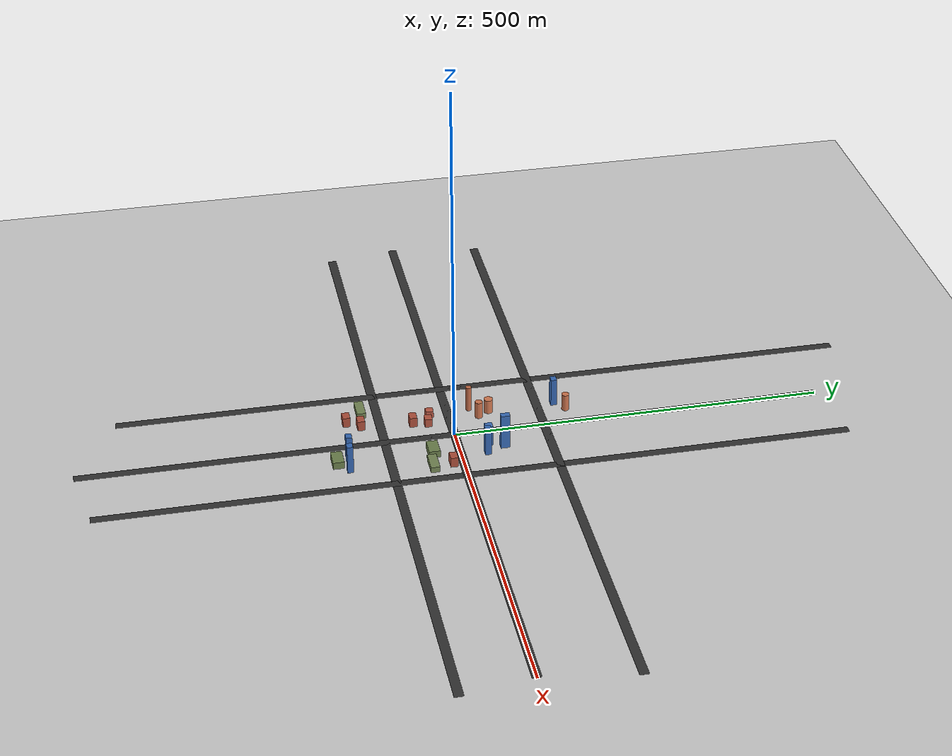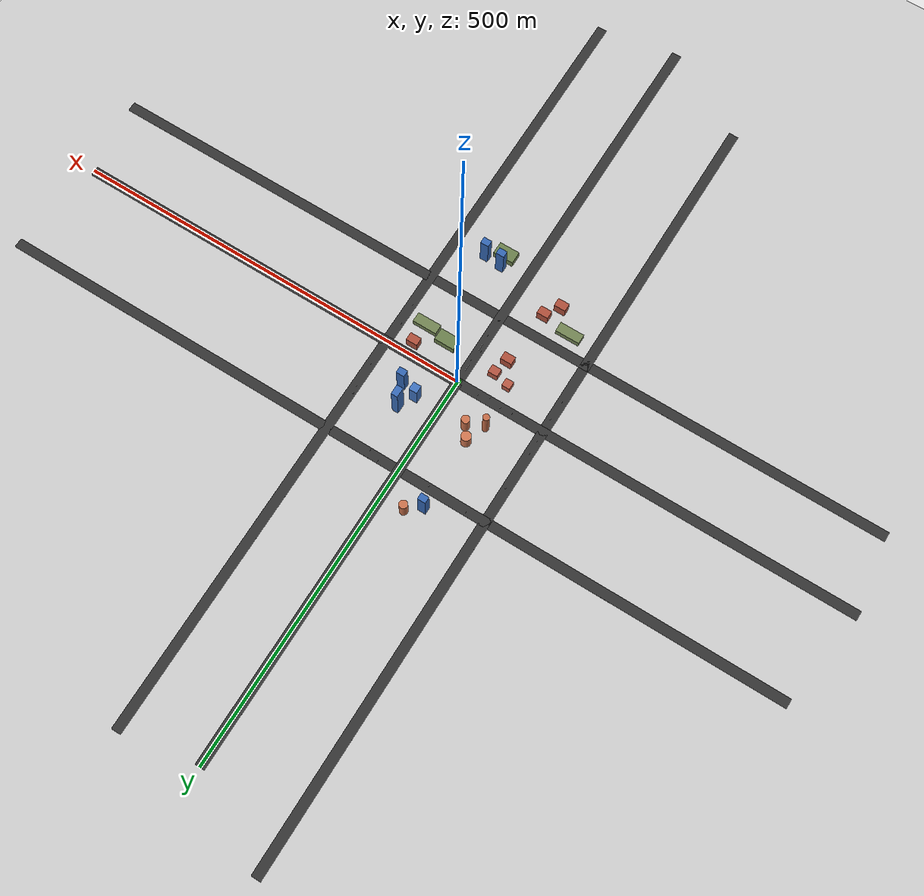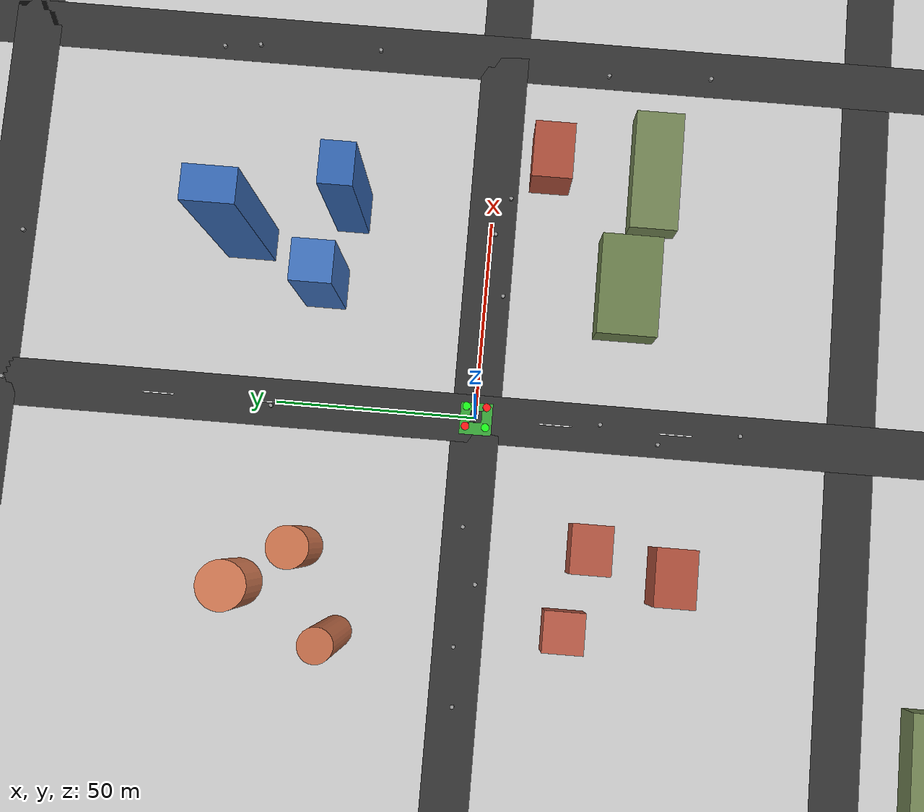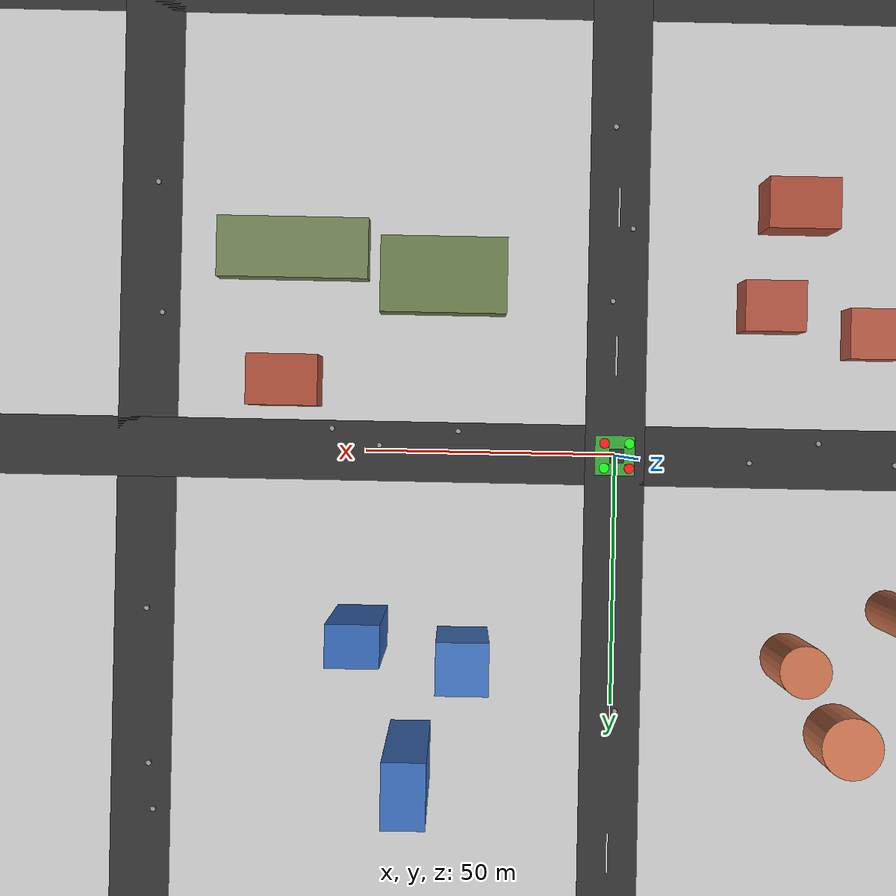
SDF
<sdf version="1.7">
 <world name="simple_city">
  <physics type="ode">
   <real_time_update_rate>1000</real_time_update_rate>
   <max_step_size>0.001</max_step_size>
   <real_time_factor>1</real_time_factor>
  </physics>
  <scene><ambient>0.4 0.4 0.4 1</ambient><background>0.53 0.81 0.98 1</background><shadows>1</shadows></scene>
  <light name="sun" type="directional">
   <pose>0 0 100 0 -0.5 0.2</pose>
   <diffuse>0.9 0.9 0.9 1</diffuse>
   <specular>0.3 0.3 0.3 1</specular>
   <direction>-0.5 0.2 -0.9</direction>
   <attenuation><range>10</range></attenuation>
   <spot><inner_angle>0</inner_angle><outer_angle>0</outer_angle><falloff>0</falloff></spot>
  </light>
  <model name="ground_plane">
   <static>1</static>
   <link name="link">
    <collision name="collision">
     <geometry><plane><normal>0 0 1</normal><size>500 500</size></plane></geometry>
    </collision>
    <visual name="visual">
     <geometry><plane><normal>0 0 1</normal><size>500 500</size></plane></geometry>
     <material>
      <script><uri>file://media/materials/scripts/gazebo.material</uri><name>Gazebo/Grey</name></script>
     </material>
    </visual>
   </link>
  </model>
  <model name="road_main_avenue">
   <static>1</static>
   <pose>0 0 0.01 0 -0 0</pose>
   <link name="link">
    <collision name="col"><geometry><box><size>12 1000 0.02</size></box></geometry></collision>
    <visual name="vis">
     <geometry><box><size>12 1000 0.02</size></box></geometry>
     <material>
      <ambient>0.15 0.15 0.15 1</ambient>
      <diffuse>0.2 0.2 0.2 1</diffuse>
      <specular>0.05 0.05 0.05 1</specular>
     </material>
    </visual>
   </link>
  </model>
  <model name="road_cross_street">
   <static>1</static>
   <pose>0 0 0.01 0 -0 0</pose>
   <link name="link">
    <collision name="col"><geometry><box><size>1000 12 0.02</size></box></geometry></collision>
    <visual name="vis">
     <geometry><box><size>1000 12 0.02</size></box></geometry>
     <material>
      <ambient>0.15 0.15 0.15 1</ambient>
      <diffuse>0.2 0.2 0.2 1</diffuse>
      <specular>0.05 0.05 0.05 1</specular>
     </material>
    </visual>
   </link>
  </model>
  <model name="road_cross_street">
   <static>1</static>
   <pose>0 0 0.01 0 -0 0</pose>
   <link name="link">
    <collision name="col"><geometry><box><size>1000 12 0.02</size></box></geometry></collision>
    <visual name="vis">
     <geometry><box><size>1000 12 0.02</size></box></geometry>
     <material>
      <ambient>0.15 0.15 0.15 1</ambient>
      <diffuse>0.2 0.2 0.2 1</diffuse>
      <specular>0.05 0.05 0.05 1</specular>
     </material>
    </visual>
   </link>
  </model>
  <model name="road_marking_N1">
   <static>1</static>
   <pose>0 20 0.02 0 -0 0</pose>
   <link name="link">
    <visual name="v">
     <geometry><box><size>0.3 8 0.001</size></box></geometry>
     <material><ambient>1 1 1 1</ambient><diffuse>1 1 1 1</diffuse></material>
    </visual>
   </link>
  </model>
  <model name="road_marking_N2">
   <static>1</static>
   <pose>0 50 0.02 0 -0 0</pose>
   <link name="link">
    <visual name="v">
     <geometry><box><size>0.3 8 0.001</size></box></geometry>
     <material><ambient>1 1 1 1</ambient><diffuse>1 1 1 1</diffuse></material>
    </visual>
   </link>
  </model>
  <model name="road_marking_N3">
   <static>1</static>
   <pose>0 80 0.02 0 -0 0</pose>
   <link name="link">
    <visual name="v">
     <geometry><box><size>0.3 8 0.001</size></box></geometry>
     <material><ambient>1 1 1 1</ambient><diffuse>1 1 1 1</diffuse></material>
    </visual>
   </link>
  </model>
  <model name="road_marking_S1">
   <static>1</static>
   <pose>0 -20 0.02 0 -0 0</pose>
   <link name="link">
    <visual name="v">
     <geometry><box><size>0.3 8 0.001</size></box></geometry>
     <material><ambient>1 1 1 1</ambient><diffuse>1 1 1 1</diffuse></material>
    </visual>
   </link>
  </model>
  <model name="road_marking_S2">
   <static>1</static>
   <pose>0 -50 0.02 0 -0 0</pose>
   <link name="link">
    <visual name="v">
     <geometry><box><size>0.3 8 0.001</size></box></geometry>
     <material><ambient>1 1 1 1</ambient><diffuse>1 1 1 1</diffuse></material>
    </visual>
   </link>
  </model>
  <model name="tower_A1">
   <static>1</static>
   <pose>30 40 15 0 -0 0</pose>
   <link name="link">
    <collision name="col"><geometry><box><size>10 10 30</size></box></geometry></collision>
    <visual name="vis">
     <geometry><box><size>10 10 30</size></box></geometry>
     <material>
      <ambient>0.2 0.35 0.6 1</ambient>
      <diffuse>0.25 0.45 0.75 1</diffuse>
      <specular>0.5 0.5 0.5 1</specular>
     </material>
    </visual>
   </link>
  </model>
  <model name="tower_A2">
   <static>1</static>
   <pose>50 35 20 0 -0 0</pose>
   <link name="link">
    <collision name="col"><geometry><box><size>10 8 40</size></box></geometry></collision>
    <visual name="vis">
     <geometry><box><size>10 8 40</size></box></geometry>
     <material>
      <ambient>0.15 0.3 0.55 1</ambient>
      <diffuse>0.2 0.4 0.7 1</diffuse>
      <specular>0.6 0.6 0.6 1</specular>
     </material>
    </visual>
   </link>
  </model>
  <model name="tower_A3">
   <static>1</static>
   <pose>40 60 25 0 -0 0</pose>
   <link name="link">
    <collision name="col"><geometry><box><size>8 12 50</size></box></geometry></collision>
    <visual name="vis">
     <geometry><box><size>8 12 50</size></box></geometry>
     <material>
      <ambient>0.18 0.32 0.58 1</ambient>
      <diffuse>0.22 0.42 0.72 1</diffuse>
      <specular>0.5 0.5 0.5 1</specular>
     </material>
    </visual>
   </link>
  </model>
  <model name="apt_B1">
   <static>1</static>
   <pose>-35 40 12 0 -0 0</pose>
   <link name="link">
    <collision name="col">
     <geometry><cylinder><radius>5</radius><length>24</length></cylinder></geometry>
    </collision>
    <visual name="vis">
     <geometry><cylinder><radius>5</radius><length>24</length></cylinder></geometry>
     <material>
      <ambient>0.72 0.38 0.25 1</ambient>
      <diffuse>0.8 0.45 0.3 1</diffuse>
      <specular>0.2 0.1 0.1 1</specular>
     </material>
    </visual>
   </link>
  </model>
  <model name="apt_B2">
   <static>1</static>
   <pose>-55 30 18 0 -0 0</pose>
   <link name="link">
    <collision name="col">
     <geometry><cylinder><radius>4</radius><length>36</length></cylinder></geometry>
    </collision>
    <visual name="vis">
     <geometry><cylinder><radius>4</radius><length>36</length></cylinder></geometry>
     <material>
      <ambient>0.68 0.35 0.22 1</ambient>
      <diffuse>0.76 0.42 0.28 1</diffuse>
      <specular>0.2 0.1 0.1 1</specular>
     </material>
    </visual>
   </link>
  </model>
  <model name="apt_B3">
   <static>1</static>
   <pose>-45 55 10 0 -0 0</pose>
   <link name="link">
    <collision name="col">
     <geometry><cylinder><radius>6</radius><length>20</length></cylinder></geometry>
    </collision>
    <visual name="vis">
     <geometry><cylinder><radius>6</radius><length>20</length></cylinder></geometry>
     <material>
      <ambient>0.74 0.4 0.27 1</ambient>
      <diffuse>0.82 0.47 0.32 1</diffuse>
      <specular>0.2 0.1 0.1 1</specular>
     </material>
    </visual>
   </link>
  </model>
  <model name="warehouse_C1">
   <static>1</static>
   <pose>35 -35 5 0 -0 0</pose>
   <link name="link">
    <collision name="col"><geometry><box><size>25 15 10</size></box></geometry></collision>
    <visual name="vis">
     <geometry><box><size>25 15 10</size></box></geometry>
     <material>
      <ambient>0.35 0.42 0.25 1</ambient>
      <diffuse>0.42 0.5 0.3 1</diffuse>
      <specular>0.1 0.1 0.1 1</specular>
     </material>
    </visual>
   </link>
  </model>
  <model name="warehouse_C2">
   <static>1</static>
   <pose>65 -40 4 0 -0 0</pose>
   <link name="link">
    <collision name="col"><geometry><box><size>30 12 8</size></box></geometry></collision>
    <visual name="vis">
     <geometry><box><size>30 12 8</size></box></geometry>
     <material>
      <ambient>0.38 0.45 0.28 1</ambient>
      <diffuse>0.45 0.52 0.33 1</diffuse>
      <specular>0.1 0.1 0.1 1</specular>
     </material>
    </visual>
   </link>
  </model>
  <model name="house_D1">
   <static>1</static>
   <pose>-30 -30 6 0 -0 0</pose>
   <link name="link">
    <collision name="col"><geometry><box><size>12 10 12</size></box></geometry></collision>
    <visual name="vis">
     <geometry><box><size>12 10 12</size></box></geometry>
     <material>
      <ambient>0.6 0.28 0.2 1</ambient>
      <diffuse>0.7 0.33 0.25 1</diffuse>
      <specular>0.15 0.1 0.1 1</specular>
     </material>
    </visual>
   </link>
  </model>
  <model name="house_D2">
   <static>1</static>
   <pose>-50 -25 5 0 -0 0</pose>
   <link name="link">
    <collision name="col"><geometry><box><size>10 10 10</size></box></geometry></collision>
    <visual name="vis">
     <geometry><box><size>10 10 10</size></box></geometry>
     <material>
      <ambient>0.62 0.3 0.22 1</ambient>
      <diffuse>0.72 0.35 0.27 1</diffuse>
      <specular>0.15 0.1 0.1 1</specular>
     </material>
    </visual>
   </link>
  </model>
  <model name="house_D3">
   <static>1</static>
   <pose>-35 -50 7 0 -0 0</pose>
   <link name="link">
    <collision name="col"><geometry><box><size>14 10 14</size></box></geometry></collision>
    <visual name="vis">
     <geometry><box><size>14 10 14</size></box></geometry>
     <material>
      <ambient>0.58 0.26 0.18 1</ambient>
      <diffuse>0.68 0.31 0.23 1</diffuse>
      <specular>0.15 0.1 0.1 1</specular>
     </material>
    </visual>
   </link>
  </model>
  <model name="park">
   <static>1</static>
   <pose>0 0 0.015 0 -0 0</pose>
   <link name="link">
    <visual name="vis">
     <geometry><box><size>8 8 0.03</size></box></geometry>
     <material><ambient>0.18 0.55 0.18 1</ambient><diffuse>0.22 0.65 0.22 1</diffuse></material>
    </visual>
   </link>
  </model>
  <gravity>0 0 -9.8</gravity>
  <magnetic_field>6e-06 2.3e-05 -4.2e-05</magnetic_field>
  <atmosphere type="adiabatic"/>
  <audio><device>default</device></audio>
  <spherical_coordinates>
   <surface_model>EARTH_WGS84</surface_model>
   <latitude_deg>0</latitude_deg>
   <longitude_deg>0</longitude_deg>
   <elevation>0</elevation>
   <heading_deg>0</heading_deg>
  </spherical_coordinates>
  <model name="road_main_avenue_clone">
   <static>1</static>
   <pose>94 16 0.01 0 -0 0</pose>
   <link name="link">
    <collision name="col"><geometry><box><size>12 1000 0.02</size></box></geometry></collision>
    <visual name="vis">
     <geometry><box><size>12 1000 0.02</size></box></geometry>
     <material>
      <ambient>0.15 0.15 0.15 1</ambient>
      <diffuse>0.2 0.2 0.2 1</diffuse>
      <specular>0.05 0.05 0.05 1</specular>
     </material>
    </visual>
   </link>
  </model>
  <model name="road_cross_street_clone">
   <static>1</static>
   <pose>19.1477 121.743 0.01 0 -0 0</pose>
   <link name="link">
    <collision name="col"><geometry><box><size>1000 12 0.02</size></box></geometry></collision>
    <visual name="vis">
     <geometry><box><size>1000 12 0.02</size></box></geometry>
     <material>
      <ambient>0.15 0.15 0.15 1</ambient>
      <diffuse>0.2 0.2 0.2 1</diffuse>
      <specular>0.05 0.05 0.05 1</specular>
     </material>
    </visual>
   </link>
  </model>
  <model name="road_cross_street_clone_0">
   <static>1</static>
   <pose>14 -93.5219 0.01 0 -0 0</pose>
   <link name="link">
    <collision name="col"><geometry><box><size>1000 12 0.02</size></box></geometry></collision>
    <visual name="vis">
     <geometry><box><size>1000 12 0.02</size></box></geometry>
     <material>
      <ambient>0.15 0.15 0.15 1</ambient>
      <diffuse>0.2 0.2 0.2 1</diffuse>
      <specular>0.05 0.05 0.05 1</specular>
     </material>
    </visual>
   </link>
  </model>
  <model name="road_main_avenue_clone_0_clone">
   <static>1</static>
   <pose>-110.965 60.7613 0.01 0 -0 0</pose>
   <link name="link">
    <collision name="col"><geometry><box><size>12 1000 0.02</size></box></geometry></collision>
    <visual name="vis">
     <geometry><box><size>12 1000 0.02</size></box></geometry>
     <material>
      <ambient>0.15 0.15 0.15 1</ambient>
      <diffuse>0.2 0.2 0.2 1</diffuse>
      <specular>0.05 0.05 0.05 1</specular>
     </material>
    </visual>
   </link>
  </model>
  <model name="unit_cylinder">
   <pose>-0.940584 51.3094 0.519998 -4e-06 -0 -1.4e-05</pose>
   <link name="link">
    <inertial>
     <mass>1</mass>
     <inertia><ixx>0.145833</ixx><ixy>0</ixy><ixz>0</ixz><iyy>0.145833</iyy><iyz>0</iyz><izz>0.125</izz></inertia>
    </inertial>
    <collision name="collision">
     <geometry><cylinder><radius>0.5</radius><length>1</length></cylinder></geometry>
    </collision>
    <visual name="visual">
     <geometry><cylinder><radius>0.5</radius><length>1</length></cylinder></geometry>
     <material>
      <script><name>Gazebo/Grey</name><uri>file://media/materials/scripts/gazebo.material</uri></script>
     </material>
    </visual>
   </link>
  </model>
  <model name="unit_cylinder_0">
   <pose>31.5503 -4.28351 0.519991 -1e-06 2e-06 -0.000484</pose>
   <link name="link">
    <inertial>
     <mass>1</mass>
     <inertia><ixx>0.145833</ixx><ixy>0</ixy><ixz>0</ixz><iyy>0.145833</iyy><iyz>0</iyz><izz>0.125</izz></inertia>
    </inertial>
    <collision name="collision">
     <geometry><cylinder><radius>0.5</radius><length>1</length></cylinder></geometry>
    </collision>
    <visual name="visual">
     <geometry><cylinder><radius>0.5</radius><length>1</length></cylinder></geometry>
     <material>
      <script><name>Gazebo/Grey</name><uri>file://media/materials/scripts/gazebo.material</uri></script>
     </material>
    </visual>
   </link>
  </model>
  <model name="unit_cylinder_0_clone">
   <pose>47.3155 -1.12101 0.519989 1e-06 -1e-06 -0.000436</pose>
   <link name="link">
    <inertial>
     <mass>1</mass>
     <inertia><ixx>0.145833</ixx><ixy>0</ixy><ixz>0</ixz><iyy>0.145833</iyy><iyz>0</iyz><izz>0.125</izz></inertia>
    </inertial>
    <collision name="collision">
     <geometry><cylinder><radius>0.5</radius><length>1</length></cylinder></geometry>
    </collision>
    <visual name="visual">
     <geometry><cylinder><radius>0.5</radius><length>1</length></cylinder></geometry>
     <material>
      <script><name>Gazebo/Grey</name><uri>file://media/materials/scripts/gazebo.material</uri></script>
     </material>
    </visual>
   </link>
  </model>
  <model name="unit_cylinder_0_clone_0">
   <pose>56.8971 -4.31404 0.52 0 -0 -0.000458</pose>
   <link name="link">
    <inertial>
     <mass>1</mass>
     <inertia><ixx>0.145833</ixx><ixy>0</ixy><ixz>0</ixz><iyy>0.145833</iyy><iyz>0</iyz><izz>0.125</izz></inertia>
    </inertial>
    <collision name="collision">
     <geometry><cylinder><radius>0.5</radius><length>1</length></cylinder></geometry>
    </collision>
    <visual name="visual">
     <geometry><cylinder><radius>0.5</radius><length>1</length></cylinder></geometry>
     <material>
      <script><name>Gazebo/Grey</name><uri>file://media/materials/scripts/gazebo.material</uri></script>
     </material>
    </visual>
   </link>
  </model>
  <model name="unit_cylinder_0_clone_1">
   <pose>0.999788 -30.9999 0.52 0 -0 -0.000123</pose>
   <link name="link">
    <inertial>
     <mass>1</mass>
     <inertia><ixx>0.145833</ixx><ixy>0</ixy><ixz>0</ixz><iyy>0.145833</iyy><iyz>0</iyz><izz>0.125</izz></inertia>
    </inertial>
    <collision name="collision">
     <geometry><cylinder><radius>0.5</radius><length>1</length></cylinder></geometry>
    </collision>
    <visual name="visual">
     <geometry><cylinder><radius>0.5</radius><length>1</length></cylinder></geometry>
     <material>
      <script><name>Gazebo/Grey</name><uri>file://media/materials/scripts/gazebo.material</uri></script>
     </material>
    </visual>
   </link>
  </model>
  <model name="unit_cylinder_0_clone_2">
   <pose>-2.7608 -45.6127 0.52 1e-06 -0 -0.000102</pose>
   <link name="link">
    <inertial>
     <mass>1</mass>
     <inertia><ixx>0.145833</ixx><ixy>0</ixy><ixz>0</ixz><iyy>0.145833</iyy><iyz>0</iyz><izz>0.125</izz></inertia>
    </inertial>
    <collision name="collision">
     <geometry><cylinder><radius>0.5</radius><length>1</length></cylinder></geometry>
    </collision>
    <visual name="visual">
     <geometry><cylinder><radius>0.5</radius><length>1</length></cylinder></geometry>
     <material>
      <script><name>Gazebo/Grey</name><uri>file://media/materials/scripts/gazebo.material</uri></script>
     </material>
    </visual>
   </link>
  </model>
  <model name="unit_cylinder_0_clone_3">
   <pose>0.999853 -65.9999 0.519998 1e-06 5e-06 -0.000198</pose>
   <link name="link">
    <inertial>
     <mass>1</mass>
     <inertia><ixx>0.145833</ixx><ixy>0</ixy><ixz>0</ixz><iyy>0.145833</iyy><iyz>0</iyz><izz>0.125</izz></inertia>
    </inertial>
    <collision name="collision">
     <geometry><cylinder><radius>0.5</radius><length>1</length></cylinder></geometry>
    </collision>
    <visual name="visual">
     <geometry><cylinder><radius>0.5</radius><length>1</length></cylinder></geometry>
     <material>
      <script><name>Gazebo/Grey</name><uri>file://media/materials/scripts/gazebo.material</uri></script>
     </material>
    </visual>
   </link>
  </model>
  <model name="unit_cylinder_0_clone_4">
   <pose>-27.0002 1.00004 0.52 0 0 -0.000422</pose>
   <link name="link">
    <inertial>
     <mass>1</mass>
     <inertia><ixx>0.145833</ixx><ixy>0</ixy><ixz>0</ixz><iyy>0.145833</iyy><iyz>0</iyz><izz>0.125</izz></inertia>
    </inertial>
    <collision name="collision">
     <geometry><cylinder><radius>0.5</radius><length>1</length></cylinder></geometry>
    </collision>
    <visual name="visual">
     <geometry><cylinder><radius>0.5</radius><length>1</length></cylinder></geometry>
     <material>
      <script><name>Gazebo/Grey</name><uri>file://media/materials/scripts/gazebo.material</uri></script>
     </material>
    </visual>
   </link>
  </model>
  <model name="unit_cylinder_0_clone_5">
   <pose>-40.8001 -3.16691 0.520003 2e-06 5e-06 -0.000382</pose>
   <link name="link">
    <inertial>
     <mass>1</mass>
     <inertia><ixx>0.145833</ixx><ixy>0</ixy><ixz>0</ixz><iyy>0.145833</iyy><iyz>0</iyz><izz>0.125</izz></inertia>
    </inertial>
    <collision name="collision">
     <geometry><cylinder><radius>0.5</radius><length>1</length></cylinder></geometry>
    </collision>
    <visual name="visual">
     <geometry><cylinder><radius>0.5</radius><length>1</length></cylinder></geometry>
     <material>
      <script><name>Gazebo/Grey</name><uri>file://media/materials/scripts/gazebo.material</uri></script>
     </material>
    </visual>
   </link>
  </model>
  <model name="unit_cylinder_0_clone_6">
   <pose>-56.2239 0.897559 0.52 0 1e-06 -0.000475</pose>
   <link name="link">
    <inertial>
     <mass>1</mass>
     <inertia><ixx>0.145833</ixx><ixy>0</ixy><ixz>0</ixz><iyy>0.145833</iyy><iyz>0</iyz><izz>0.125</izz></inertia>
    </inertial>
    <collision name="collision">
     <geometry><cylinder><radius>0.5</radius><length>1</length></cylinder></geometry>
    </collision>
    <visual name="visual">
     <geometry><cylinder><radius>0.5</radius><length>1</length></cylinder></geometry>
     <material>
      <script><name>Gazebo/Grey</name><uri>file://media/materials/scripts/gazebo.material</uri></script>
     </material>
    </visual>
   </link>
  </model>
  <model name="unit_cylinder_0_clone_7">
   <pose>-70.5148 4.7e-05 0.519996 7e-06 2e-06 -0.000358</pose>
   <link name="link">
    <inertial>
     <mass>1</mass>
     <inertia><ixx>0.145833</ixx><ixy>0</ixy><ixz>0</ixz><iyy>0.145833</iyy><iyz>0</iyz><izz>0.125</izz></inertia>
    </inertial>
    <collision name="collision">
     <geometry><cylinder><radius>0.5</radius><length>1</length></cylinder></geometry>
    </collision>
    <visual name="visual">
     <geometry><cylinder><radius>0.5</radius><length>1</length></cylinder></geometry>
     <material>
      <script><name>Gazebo/Grey</name><uri>file://media/materials/scripts/gazebo.material</uri></script>
     </material>
    </visual>
   </link>
  </model>
  <model name="unit_cylinder_0_clone_8">
   <pose>-111.57 29.6692 0.52 0 -0 -0.000187</pose>
   <link name="link">
    <inertial>
     <mass>1</mass>
     <inertia><ixx>0.145833</ixx><ixy>0</ixy><ixz>0</ixz><iyy>0.145833</iyy><iyz>0</iyz><izz>0.125</izz></inertia>
    </inertial>
    <collision name="collision">
     <geometry><cylinder><radius>0.5</radius><length>1</length></cylinder></geometry>
    </collision>
    <visual name="visual">
     <geometry><cylinder><radius>0.5</radius><length>1</length></cylinder></geometry>
     <material>
      <script><name>Gazebo/Grey</name><uri>file://media/materials/scripts/gazebo.material</uri></script>
     </material>
    </visual>
   </link>
  </model>
  <model name="unit_cylinder_0_clone_9">
   <pose>-110.091 -16.979 0.52 0 -0 -0.000173</pose>
   <link name="link">
    <inertial>
     <mass>1</mass>
     <inertia><ixx>0.145833</ixx><ixy>0</ixy><ixz>0</ixz><iyy>0.145833</iyy><iyz>0</iyz><izz>0.125</izz></inertia>
    </inertial>
    <collision name="collision">
     <geometry><cylinder><radius>0.5</radius><length>1</length></cylinder></geometry>
    </collision>
    <visual name="visual">
     <geometry><cylinder><radius>0.5</radius><length>1</length></cylinder></geometry>
     <material>
      <script><name>Gazebo/Grey</name><uri>file://media/materials/scripts/gazebo.material</uri></script>
     </material>
    </visual>
   </link>
  </model>
  <model name="unit_cylinder_0_clone_10">
   <pose>-110.986 12.8046 0.52 0 -0 -0.000166</pose>
   <link name="link">
    <inertial>
     <mass>1</mass>
     <inertia><ixx>0.145833</ixx><ixy>0</ixy><ixz>0</ixz><iyy>0.145833</iyy><iyz>0</iyz><izz>0.125</izz></inertia>
    </inertial>
    <collision name="collision">
     <geometry><cylinder><radius>0.5</radius><length>1</length></cylinder></geometry>
    </collision>
    <visual name="visual">
     <geometry><cylinder><radius>0.5</radius><length>1</length></cylinder></geometry>
     <material>
      <script><name>Gazebo/Grey</name><uri>file://media/materials/scripts/gazebo.material</uri></script>
     </material>
    </visual>
   </link>
  </model>
  <model name="unit_cylinder_0_clone_11">
   <pose>-109.736 77.4479 0.519993 -3e-06 3e-06 -0.000191</pose>
   <link name="link">
    <inertial>
     <mass>1</mass>
     <inertia><ixx>0.145833</ixx><ixy>0</ixy><ixz>0</ixz><iyy>0.145833</iyy><iyz>0</iyz><izz>0.125</izz></inertia>
    </inertial>
    <collision name="collision">
     <geometry><cylinder><radius>0.5</radius><length>1</length></cylinder></geometry>
    </collision>
    <visual name="visual">
     <geometry><cylinder><radius>0.5</radius><length>1</length></cylinder></geometry>
     <material>
      <script><name>Gazebo/Grey</name><uri>file://media/materials/scripts/gazebo.material</uri></script>
     </material>
    </visual>
   </link>
  </model>
  <model name="unit_cylinder_0_clone_12">
   <pose>-87.4678 123.431 0.51999 -0 -0 -0.000456</pose>
   <link name="link">
    <inertial>
     <mass>1</mass>
     <inertia><ixx>0.145833</ixx><ixy>0</ixy><ixz>0</ixz><iyy>0.145833</iyy><iyz>0</iyz><izz>0.125</izz></inertia>
    </inertial>
    <collision name="collision">
     <geometry><cylinder><radius>0.5</radius><length>1</length></cylinder></geometry>
    </collision>
    <visual name="visual">
     <geometry><cylinder><radius>0.5</radius><length>1</length></cylinder></geometry>
     <material>
      <script><name>Gazebo/Grey</name><uri>file://media/materials/scripts/gazebo.material</uri></script>
     </material>
    </visual>
   </link>
  </model>
  <model name="unit_cylinder_0_clone_13">
   <pose>0.953061 119.292 0.519998 -1e-06 -5e-06 -0.000177</pose>
   <link name="link">
    <inertial>
     <mass>1</mass>
     <inertia><ixx>0.145833</ixx><ixy>0</ixy><ixz>0</ixz><iyy>0.145833</iyy><iyz>0</iyz><izz>0.125</izz></inertia>
    </inertial>
    <collision name="collision">
     <geometry><cylinder><radius>0.5</radius><length>1</length></cylinder></geometry>
    </collision>
    <visual name="visual">
     <geometry><cylinder><radius>0.5</radius><length>1</length></cylinder></geometry>
     <material>
      <script><name>Gazebo/Grey</name><uri>file://media/materials/scripts/gazebo.material</uri></script>
     </material>
    </visual>
   </link>
  </model>
  <model name="unit_cylinder_0_clone_14">
   <pose>24.8744 124.534 0.519991 1e-06 1e-06 -0.000443</pose>
   <link name="link">
    <inertial>
     <mass>1</mass>
     <inertia><ixx>0.145833</ixx><ixy>0</ixy><ixz>0</ixz><iyy>0.145833</iyy><iyz>0</iyz><izz>0.125</izz></inertia>
    </inertial>
    <collision name="collision">
     <geometry><cylinder><radius>0.5</radius><length>1</length></cylinder></geometry>
    </collision>
    <visual name="visual">
     <geometry><cylinder><radius>0.5</radius><length>1</length></cylinder></geometry>
     <material>
      <script><name>Gazebo/Grey</name><uri>file://media/materials/scripts/gazebo.material</uri></script>
     </material>
    </visual>
   </link>
  </model>
  <model name="unit_cylinder_0_clone_15">
   <pose>38.6693 118.719 0.519992 1e-06 -3e-06 -0.000399</pose>
   <link name="link">
    <inertial>
     <mass>1</mass>
     <inertia><ixx>0.145833</ixx><ixy>0</ixy><ixz>0</ixz><iyy>0.145833</iyy><iyz>0</iyz><izz>0.125</izz></inertia>
    </inertial>
    <collision name="collision">
     <geometry><cylinder><radius>0.5</radius><length>1</length></cylinder></geometry>
    </collision>
    <visual name="visual">
     <geometry><cylinder><radius>0.5</radius><length>1</length></cylinder></geometry>
     <material>
      <script><name>Gazebo/Grey</name><uri>file://media/materials/scripts/gazebo.material</uri></script>
     </material>
    </visual>
   </link>
  </model>
  <model name="unit_cylinder_0_clone_16">
   <pose>-38.0044 119.979 0.52 -0 -0 -0.000327</pose>
   <link name="link">
    <inertial>
     <mass>1</mass>
     <inertia><ixx>0.145833</ixx><ixy>0</ixy><ixz>0</ixz><iyy>0.145833</iyy><iyz>0</iyz><izz>0.125</izz></inertia>
    </inertial>
    <collision name="collision">
     <geometry><cylinder><radius>0.5</radius><length>1</length></cylinder></geometry>
    </collision>
    <visual name="visual">
     <geometry><cylinder><radius>0.5</radius><length>1</length></cylinder></geometry>
     <material>
      <script><name>Gazebo/Grey</name><uri>file://media/materials/scripts/gazebo.material</uri></script>
     </material>
    </visual>
   </link>
  </model>
  <model name="unit_cylinder_0_clone_17">
   <pose>92.402 63.5091 0.520002 -4e-06 -1e-06 -0.000243</pose>
   <link name="link">
    <inertial>
     <mass>1</mass>
     <inertia><ixx>0.145833</ixx><ixy>0</ixy><ixz>0</ixz><iyy>0.145833</iyy><iyz>0</iyz><izz>0.125</izz></inertia>
    </inertial>
    <collision name="collision">
     <geometry><cylinder><radius>0.5</radius><length>1</length></cylinder></geometry>
    </collision>
    <visual name="visual">
     <geometry><cylinder><radius>0.5</radius><length>1</length></cylinder></geometry>
     <material>
      <script><name>Gazebo/Grey</name><uri>file://media/materials/scripts/gazebo.material</uri></script>
     </material>
    </visual>
   </link>
  </model>
  <model name="unit_cylinder_0_clone_18">
   <pose>-110.85 -41.2998 0.52 0 -0 -0.000248</pose>
   <link name="link">
    <inertial>
     <mass>1</mass>
     <inertia><ixx>0.145833</ixx><ixy>0</ixy><ixz>0</ixz><iyy>0.145833</iyy><iyz>0</iyz><izz>0.125</izz></inertia>
    </inertial>
    <collision name="collision">
     <geometry><cylinder><radius>0.5</radius><length>1</length></cylinder></geometry>
    </collision>
    <visual name="visual">
     <geometry><cylinder><radius>0.5</radius><length>1</length></cylinder></geometry>
     <material>
      <script><name>Gazebo/Grey</name><uri>file://media/materials/scripts/gazebo.material</uri></script>
     </material>
    </visual>
   </link>
  </model>
  <model name="tower_A2_clone">
   <static>1</static>
   <pose>-46.7175 144.683 20 0 -0 0</pose>
   <link name="link">
    <collision name="col"><geometry><box><size>10 8 40</size></box></geometry></collision>
    <visual name="vis">
     <geometry><box><size>10 8 40</size></box></geometry>
     <material>
      <ambient>0.15 0.3 0.55 1</ambient>
      <diffuse>0.2 0.4 0.7 1</diffuse>
      <specular>0.6 0.6 0.6 1</specular>
     </material>
    </visual>
   </link>
  </model>
  <model name="apt_B1_clone">
   <static>1</static>
   <pose>-29.6441 157.803 12 0 -0 0</pose>
   <link name="link">
    <collision name="col">
     <geometry><cylinder><radius>5</radius><length>24</length></cylinder></geometry>
    </collision>
    <visual name="vis">
     <geometry><cylinder><radius>5</radius><length>24</length></cylinder></geometry>
     <material>
      <ambient>0.72 0.38 0.25 1</ambient>
      <diffuse>0.8 0.45 0.3 1</diffuse>
      <specular>0.2 0.1 0.1 1</specular>
     </material>
    </visual>
   </link>
  </model>
  <model name="house_D3_clone">
   <static>1</static>
   <pose>-40.6883 -119.253 7 0 -0 0</pose>
   <link name="link">
    <collision name="col"><geometry><box><size>14 10 14</size></box></geometry></collision>
    <visual name="vis">
     <geometry><box><size>14 10 14</size></box></geometry>
     <material>
      <ambient>0.58 0.26 0.18 1</ambient>
      <diffuse>0.68 0.31 0.23 1</diffuse>
      <specular>0.15 0.1 0.1 1</specular>
     </material>
    </visual>
   </link>
  </model>
  <model name="house_D3_clone_0">
   <static>1</static>
   <pose>-52.6885 -137.346 7 0 -0 0</pose>
   <link name="link">
    <collision name="col"><geometry><box><size>14 10 14</size></box></geometry></collision>
    <visual name="vis">
     <geometry><box><size>14 10 14</size></box></geometry>
     <material>
      <ambient>0.58 0.26 0.18 1</ambient>
      <diffuse>0.68 0.31 0.23 1</diffuse>
      <specular>0.15 0.1 0.1 1</specular>
     </material>
    </visual>
   </link>
  </model>
  <model name="house_D3_clone_1">
   <static>1</static>
   <pose>66.0991 -13.6957 7 0 -0 0</pose>
   <link name="link">
    <collision name="col"><geometry><box><size>14 10 14</size></box></geometry></collision>
    <visual name="vis">
     <geometry><box><size>14 10 14</size></box></geometry>
     <material>
      <ambient>0.58 0.26 0.18 1</ambient>
      <diffuse>0.68 0.31 0.23 1</diffuse>
      <specular>0.15 0.1 0.1 1</specular>
     </material>
    </visual>
   </link>
  </model>
  <model name="warehouse_C2_clone">
   <static>1</static>
   <pose>-76.7992 -114.937 4 0 -0 0</pose>
   <link name="link">
    <collision name="col"><geometry><box><size>30 12 8</size></box></geometry></collision>
    <visual name="vis">
     <geometry><box><size>30 12 8</size></box></geometry>
     <material>
      <ambient>0.38 0.45 0.28 1</ambient>
      <diffuse>0.45 0.52 0.33 1</diffuse>
      <specular>0.1 0.1 0.1 1</specular>
     </material>
    </visual>
   </link>
  </model>
  <model name="tower_A2_clone_0">
   <static>1</static>
   <pose>32.5841 -145.653 20 0 -0 0</pose>
   <link name="link">
    <collision name="col"><geometry><box><size>10 8 40</size></box></geometry></collision>
    <visual name="vis">
     <geometry><box><size>10 8 40</size></box></geometry>
     <material>
      <ambient>0.15 0.3 0.55 1</ambient>
      <diffuse>0.2 0.4 0.7 1</diffuse>
      <specular>0.6 0.6 0.6 1</specular>
     </material>
    </visual>
   </link>
  </model>
  <model name="tower_A2_clone_1">
   <static>1</static>
   <pose>54.1618 -147.713 20 0 -0 0</pose>
   <link name="link">
    <collision name="col"><geometry><box><size>10 8 40</size></box></geometry></collision>
    <visual name="vis">
     <geometry><box><size>10 8 40</size></box></geometry>
     <material>
      <ambient>0.15 0.3 0.55 1</ambient>
      <diffuse>0.2 0.4 0.7 1</diffuse>
      <specular>0.6 0.6 0.6 1</specular>
     </material>
    </visual>
   </link>
  </model>
  <model name="warehouse_C1_clone">
   <static>1</static>
   <pose>34.5841 -161.459 5 0 -0 0</pose>
   <link name="link">
    <collision name="col"><geometry><box><size>25 15 10</size></box></geometry></collision>
    <visual name="vis">
     <geometry><box><size>25 15 10</size></box></geometry>
     <material>
      <ambient>0.35 0.42 0.25 1</ambient>
      <diffuse>0.42 0.5 0.3 1</diffuse>
      <specular>0.1 0.1 0.1 1</specular>
     </material>
    </visual>
   </link>
  </model>
  <model name="unit_cylinder_0_clone_19">
   <pose>93.4296 32.4253 0.52 0 -0 -0.000378</pose>
   <link name="link">
    <inertial>
     <mass>1</mass>
     <inertia><ixx>0.145833</ixx><ixy>0</ixy><ixz>0</ixz><iyy>0.145833</iyy><iyz>0</iyz><izz>0.125</izz></inertia>
    </inertial>
    <collision name="collision">
     <geometry><cylinder><radius>0.5</radius><length>1</length></cylinder></geometry>
    </collision>
    <visual name="visual">
     <geometry><cylinder><radius>0.5</radius><length>1</length></cylinder></geometry>
     <material>
      <script><name>Gazebo/Grey</name><uri>file://media/materials/scripts/gazebo.material</uri></script>
     </material>
    </visual>
   </link>
  </model>
  <model name="unit_cylinder_0_clone_20">
   <pose>91.3268 72.7236 0.520004 7e-06 1e-06 -0.000366</pose>
   <link name="link">
    <inertial>
     <mass>1</mass>
     <inertia><ixx>0.145833</ixx><ixy>0</ixy><ixz>0</ixz><iyy>0.145833</iyy><iyz>0</iyz><izz>0.125</izz></inertia>
    </inertial>
    <collision name="collision">
     <geometry><cylinder><radius>0.5</radius><length>1</length></cylinder></geometry>
    </collision>
    <visual name="visual">
     <geometry><cylinder><radius>0.5</radius><length>1</length></cylinder></geometry>
     <material>
      <script><name>Gazebo/Grey</name><uri>file://media/materials/scripts/gazebo.material</uri></script>
     </material>
    </visual>
   </link>
  </model>
  <model name="unit_cylinder_0_clone_21">
   <pose>108.052 116.188 0.519992 1e-06 -0 -0.000355</pose>
   <link name="link">
    <inertial>
     <mass>1</mass>
     <inertia><ixx>0.145833</ixx><ixy>0</ixy><ixz>0</ixz><iyy>0.145833</iyy><iyz>0</iyz><izz>0.125</izz></inertia>
    </inertial>
    <collision name="collision">
     <geometry><cylinder><radius>0.5</radius><length>1</length></cylinder></geometry>
    </collision>
    <visual name="visual">
     <geometry><cylinder><radius>0.5</radius><length>1</length></cylinder></geometry>
     <material>
      <script><name>Gazebo/Grey</name><uri>file://media/materials/scripts/gazebo.material</uri></script>
     </material>
    </visual>
   </link>
  </model>
  <model name="unit_cylinder_0_clone_19_clone">
   <pose>91.4002 -27 0.520001 -1e-06 -2e-06 -0.000384</pose>
   <link name="link">
    <inertial>
     <mass>1</mass>
     <inertia><ixx>0.145833</ixx><ixy>0</ixy><ixz>0</ixz><iyy>0.145833</iyy><iyz>0</iyz><izz>0.125</izz></inertia>
    </inertial>
    <collision name="collision">
     <geometry><cylinder><radius>0.5</radius><length>1</length></cylinder></geometry>
    </collision>
    <visual name="visual">
     <geometry><cylinder><radius>0.5</radius><length>1</length></cylinder></geometry>
     <material>
      <script><name>Gazebo/Grey</name><uri>file://media/materials/scripts/gazebo.material</uri></script>
     </material>
    </visual>
   </link>
  </model>
  <model name="unit_cylinder_0_clone_19_clone_0">
   <pose>92.7146 -53.215 0.52 0 -0 -0.000375</pose>
   <link name="link">
    <inertial>
     <mass>1</mass>
     <inertia><ixx>0.145833</ixx><ixy>0</ixy><ixz>0</ixz><iyy>0.145833</iyy><iyz>0</iyz><izz>0.125</izz></inertia>
    </inertial>
    <collision name="collision">
     <geometry><cylinder><radius>0.5</radius><length>1</length></cylinder></geometry>
    </collision>
    <visual name="visual">
     <geometry><cylinder><radius>0.5</radius><length>1</length></cylinder></geometry>
     <material>
      <script><name>Gazebo/Grey</name><uri>file://media/materials/scripts/gazebo.material</uri></script>
     </material>
    </visual>
   </link>
  </model>
  <model name="drone">
   <pose>0 0 5 0 0 0</pose>
   <link name="base_link">
    <gravity>false</gravity>
    <inertial>
     <mass>1.5</mass>
     <inertia>
      <ixx>0.0347563</ixx>
      <ixy>0</ixy>
      <ixz>0</ixz>
      <iyy>0.0458929</iyy>
      <iyz>0</iyz>
      <izz>0.0977</izz>
     </inertia>
    </inertial>
    <visual name="body_vis">
     <geometry><box><size>2.8 2.8 0.5</size></box></geometry>
     <material><ambient>0.1 0.1 0.1 1</ambient><diffuse>0.2 0.2 0.2 1</diffuse></material>
    </visual>
    <collision name="body_col"><geometry><box><size>0.35 0.35 0.12</size></box></geometry></collision>
    <visual name="arm_fr">
     <pose>1.76 -1.76 0 0 0 -0.785</pose>
     <geometry><cylinder><radius>0.08</radius><length>4.0</length></cylinder></geometry>
     <material><ambient>0.3 0.3 0.3 1</ambient><diffuse>0.4 0.4 0.4 1</diffuse></material>
    </visual>
    <visual name="arm_fl">
     <pose>1.76 1.76 0 0 0 0.785</pose>
     <geometry><cylinder><radius>0.08</radius><length>4.0</length></cylinder></geometry>
     <material><ambient>0.3 0.3 0.3 1</ambient><diffuse>0.4 0.4 0.4 1</diffuse></material>
    </visual>
    <visual name="arm_rr">
     <pose>-1.76 -1.76 0 0 0 0.785</pose>
     <geometry><cylinder><radius>0.08</radius><length>4.0</length></cylinder></geometry>
     <material><ambient>0.3 0.3 0.3 1</ambient><diffuse>0.4 0.4 0.4 1</diffuse></material>
    </visual>
    <visual name="arm_rl">
     <pose>-1.76 1.76 0 0 0 -0.785</pose>
     <geometry><cylinder><radius>0.08</radius><length>4.0</length></cylinder></geometry>
     <material><ambient>0.3 0.3 0.3 1</ambient><diffuse>0.4 0.4 0.4 1</diffuse></material>
    </visual>
    <visual name="rotor_fr">
     <pose>2.48 -2.48 0.2 0 0 0</pose>
     <geometry><cylinder><radius>1.0</radius><length>0.05</length></cylinder></geometry>
     <material><ambient>0.8 0.1 0.1 1</ambient><diffuse>1.0 0.1 0.1 1</diffuse></material>
    </visual>
    <visual name="rotor_fl">
     <pose>2.48 2.48 0.2 0 0 0</pose>
     <geometry><cylinder><radius>1.0</radius><length>0.05</length></cylinder></geometry>
     <material><ambient>0.1 0.8 0.1 1</ambient><diffuse>0.1 1.0 0.1 1</diffuse></material>
    </visual>
    <visual name="rotor_rr">
     <pose>-2.48 -2.48 0.2 0 0 0</pose>
     <geometry><cylinder><radius>1.0</radius><length>0.05</length></cylinder></geometry>
     <material><ambient>0.1 0.8 0.1 1</ambient><diffuse>0.1 1.0 0.1 1</diffuse></material>
    </visual>
    <visual name="rotor_rl">
     <pose>-2.48 2.48 0.2 0 0 0</pose>
     <geometry><cylinder><radius>1.0</radius><length>0.05</length></cylinder></geometry>
     <material><ambient>0.8 0.1 0.1 1</ambient><diffuse>1.0 0.1 0.1 1</diffuse></material>
    </visual>
    <visual name="lidar_body">
     <pose>0 0 -0.5 0 0 0</pose>
     <geometry><cylinder><radius>0.25</radius><length>0.4</length></cylinder></geometry>
     <material><ambient>0.05 0.05 0.05 1</ambient><diffuse>0.1 0.1 0.1 1</diffuse></material>
    </visual>
    <sensor name="lidar" type="ray">
     <pose>0 0 -0.12 0 0 0</pose>
     <always_on>true</always_on>
     <update_rate>10</update_rate>
     <visualize>true</visualize>
     <ray>
      <scan>
       <horizontal>
        <samples>720</samples>
        <resolution>1</resolution>
        <min_angle>-3.14159265</min_angle>
        <max_angle>3.14159265</max_angle>
       </horizontal>
       <vertical>
        <samples>16</samples>
        <resolution>1</resolution>
        <min_angle>-0.7853982</min_angle>
        <max_angle>0.1745329</max_angle>
       </vertical>
      </scan>
      <range><min>0.1</min><max>150.0</max><resolution>0.01</resolution></range>
      <noise><type>gaussian</type><mean>0.0</mean><stddev>0.01</stddev></noise>
     </ray>
     <plugin name="gazebo_ros_lidar" filename="libgazebo_ros_ray_sensor.so">
      <ros><remapping>~/out:=/drone/lidar/scan</remapping></ros>
      <output_type>sensor_msgs/LaserScan</output_type>
      <frame_name>base_link</frame_name>
     </plugin>
     <plugin name="gazebo_ros_lidar_pc2" filename="libgazebo_ros_ray_sensor.so">
      <ros><remapping>~/out:=/drone/lidar/points</remapping></ros>
      <output_type>sensor_msgs/PointCloud2</output_type>
      <frame_name>base_link</frame_name>
     </plugin>
    </sensor>
    <sensor name="imu_sensor" type="imu">
     <always_on>true</always_on>
     <update_rate>100</update_rate>
     <visualize>true</visualize>
     <imu>
      <angular_velocity>
       <x><noise type="gaussian"><mean>0.0</mean><stddev>0.0002</stddev></noise></x>
       <y><noise type="gaussian"><mean>0.0</mean><stddev>0.0002</stddev></noise></y>
       <z><noise type="gaussian"><mean>0.0</mean><stddev>0.0002</stddev></noise></z>
      </angular_velocity>
      <linear_acceleration>
       <x><noise type="gaussian"><mean>0.0</mean><stddev>0.017</stddev></noise></x>
       <y><noise type="gaussian"><mean>0.0</mean><stddev>0.017</stddev></noise></y>
       <z><noise type="gaussian"><mean>0.0</mean><stddev>0.017</stddev></noise></z>
      </linear_acceleration>
     </imu>
     <plugin name="imu_plugin" filename="libgazebo_ros_imu_sensor.so">
      <ros><remapping>~/out:=/drone/imu</remapping></ros>
      <frame_name>base_link</frame_name>
     </plugin>
    </sensor>
   </link>
   <plugin name="drone_waypoint_plugin" filename="libgazebo_ros_planar_move.so">
    <ros><remapping>cmd_vel:=/drone/cmd_vel</remapping><remapping>odom:=/drone/odom</remapping></ros>
    <update_rate>50</update_rate>
    <publish_rate>10</publish_rate>
    <publish_odom>true</publish_odom>
    <publish_odom_tf>true</publish_odom_tf>
    <odometry_frame>odom</odometry_frame>
    <robot_base_frame>base_link</robot_base_frame>
   </plugin>
  </model>
 </world>
</sdf>
